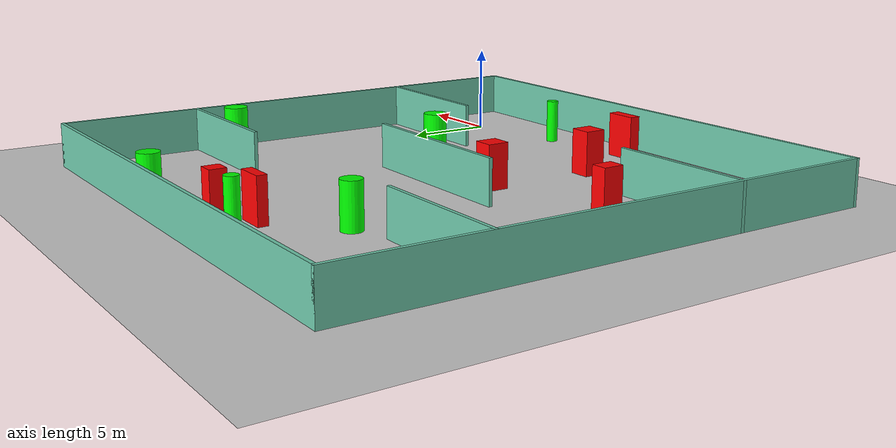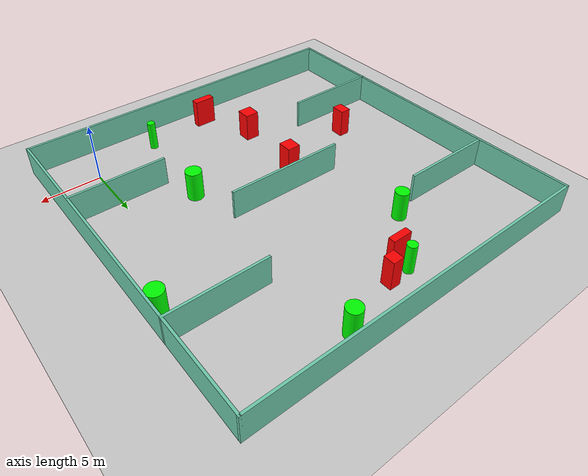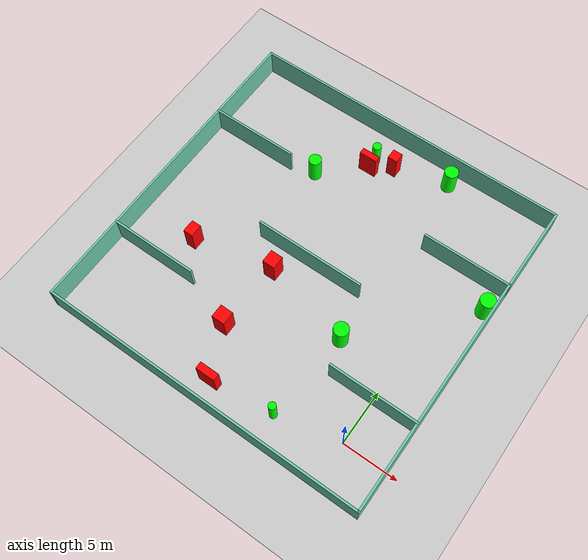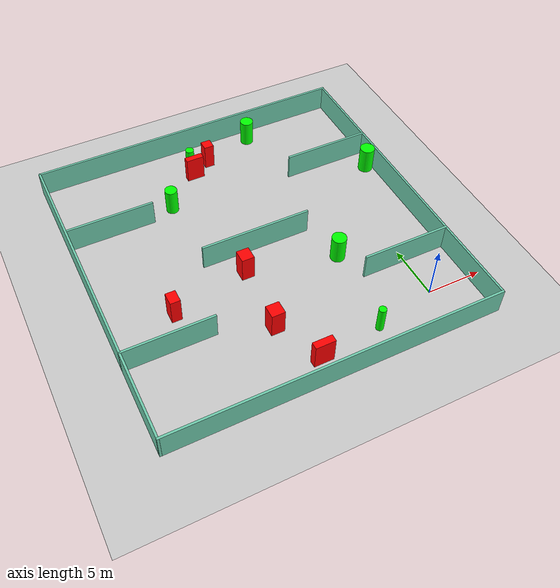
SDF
<sdf version="1.7">
 <world name="default">
  <light name="sun" type="directional">
   <pose>0 0 10 0 -0 0</pose>
   <diffuse>0.8 0.8 0.8 1</diffuse>
   <specular>0.2 0.2 0.2 1</specular>
   <attenuation>
    <range>1000</range>
    <constant>0.9</constant>
    <linear>0.01</linear>
    <quadratic>0.001</quadratic>
   </attenuation>
   <direction>-0.5 0.1 -0.9</direction>
   <spot><inner_angle>0</inner_angle><outer_angle>0</outer_angle><falloff>0</falloff></spot>
  </light>
  <model name="ground_plane">
   <static>1</static>
   <link name="link">
    <collision name="collision">
     <geometry><plane><normal>0 0 1</normal><size>100 100</size></plane></geometry>
     <surface>
      <contact><collide_bitmask>65535</collide_bitmask></contact>
      <friction><ode><mu>100</mu><mu2>50</mu2></ode></friction>
     </surface>
    </collision>
    <visual name="visual">
     <cast_shadows>0</cast_shadows>
     <geometry><plane><normal>0 0 1</normal><size>100 100</size></plane></geometry>
     <material>
      <script><uri>file://media/materials/scripts/gazebo.material</uri><name>Gazebo/Grey</name></script>
     </material>
    </visual>
   </link>
  </model>
  <gravity>0 0 -9.8</gravity>
  <magnetic_field>6e-06 2.3e-05 -4.2e-05</magnetic_field>
  <atmosphere type="adiabatic"/>
  <physics type="ode">
   <max_step_size>0.001</max_step_size>
   <real_time_factor>1</real_time_factor>
   <real_time_update_rate>1000</real_time_update_rate>
  </physics>
  <scene><ambient>0.4 0.4 0.4 1</ambient><background>0.7 0.7 0.7 1</background><shadows>1</shadows></scene>
  <spherical_coordinates>
   <surface_model>EARTH_WGS84</surface_model>
   <latitude_deg>0</latitude_deg>
   <longitude_deg>0</longitude_deg>
   <elevation>0</elevation>
   <heading_deg>0</heading_deg>
  </spherical_coordinates>
  <model name="my_base_walls">
   <link name="Wall_10">
    <collision name="Wall_10_Collision">
     <geometry><box><size>8.2 0.2 2.5</size></box></geometry>
     <pose>0 0 1.25 0 -0 0</pose>
    </collision>
    <visual name="Wall_10_Visual">
     <pose>0 0 1.25 0 -0 0</pose>
     <geometry><box><size>8.2 0.2 2.5</size></box></geometry>
     <material>
      <script><uri>file://media/materials/scripts/gazebo.material</uri><name>Gazebo/Grey</name></script>
      <ambient>0.435294 0.796078 0.67451 1</ambient>
     </material>
     <meta><layer>0</layer></meta>
    </visual>
    <pose>-11 -7 0 0 -0 0</pose>
   </link>
   <link name="Wall_12">
    <collision name="Wall_12_Collision">
     <geometry><box><size>8.2 0.2 2.5</size></box></geometry>
     <pose>0 0 1.25 0 -0 0</pose>
    </collision>
    <visual name="Wall_12_Visual">
     <pose>0 0 1.25 0 -0 0</pose>
     <geometry><box><size>8.2 0.2 2.5</size></box></geometry>
     <material>
      <script><uri>file://media/materials/scripts/gazebo.material</uri><name>Gazebo/Grey</name></script>
      <ambient>0.435294 0.796078 0.67451 1</ambient>
     </material>
     <meta><layer>0</layer></meta>
    </visual>
    <pose>-11 7 0 0 -0 0</pose>
   </link>
   <link name="Wall_14">
    <collision name="Wall_14_Collision">
     <geometry><box><size>8.2 0.2 2.5</size></box></geometry>
     <pose>0 0 1.25 0 -0 0</pose>
    </collision>
    <visual name="Wall_14_Visual">
     <pose>0 0 1.25 0 -0 0</pose>
     <geometry><box><size>8.2 0.2 2.5</size></box></geometry>
     <material>
      <script><uri>file://media/materials/scripts/gazebo.material</uri><name>Gazebo/Grey</name></script>
      <ambient>0.435294 0.796078 0.67451 1</ambient>
     </material>
     <meta><layer>0</layer></meta>
    </visual>
    <pose>11 7 0 0 -0 3.14159</pose>
   </link>
   <link name="Wall_16">
    <collision name="Wall_16_Collision">
     <geometry><box><size>10.2 0.2 2.5</size></box></geometry>
     <pose>0 0 1.25 0 -0 0</pose>
    </collision>
    <visual name="Wall_16_Visual">
     <pose>0 0 1.25 0 -0 0</pose>
     <geometry><box><size>10.2 0.2 2.5</size></box></geometry>
     <material>
      <script><uri>file://media/materials/scripts/gazebo.material</uri><name>Gazebo/Grey</name></script>
      <ambient>0.435294 0.796078 0.67451 1</ambient>
     </material>
     <meta><layer>0</layer></meta>
    </visual>
    <pose>0 0 0 0 -0 3.14159</pose>
   </link>
   <link name="Wall_2">
    <collision name="Wall_2_Collision">
     <geometry><box><size>30.2 0.2 2.5</size></box></geometry>
     <pose>0 0 1.25 0 -0 0</pose>
    </collision>
    <visual name="Wall_2_Visual">
     <pose>0 0 1.25 0 -0 0</pose>
     <geometry><box><size>30.2 0.2 2.5</size></box></geometry>
     <material>
      <script><uri>file://media/materials/scripts/gazebo.material</uri><name>Gazebo/Grey</name></script>
      <ambient>0.435294 0.796078 0.67451 1</ambient>
     </material>
     <meta><layer>0</layer></meta>
    </visual>
    <pose>0 -15 0 0 -0 3.14159</pose>
   </link>
   <link name="Wall_3">
    <collision name="Wall_3_Collision">
     <geometry><box><size>30.2 0.2 2.5</size></box></geometry>
     <pose>0 0 1.25 0 -0 0</pose>
    </collision>
    <visual name="Wall_3_Visual">
     <pose>0 0 1.25 0 -0 0</pose>
     <geometry><box><size>30.2 0.2 2.5</size></box></geometry>
     <material>
      <script><uri>file://media/materials/scripts/gazebo.material</uri><name>Gazebo/Grey</name></script>
      <ambient>0.435294 0.796078 0.67451 1</ambient>
     </material>
     <meta><layer>0</layer></meta>
    </visual>
    <pose>-15 0 0 0 -0 1.5708</pose>
   </link>
   <link name="Wall_4">
    <collision name="Wall_4_Collision">
     <geometry><box><size>30.2 0.2 2.5</size></box></geometry>
     <pose>0 0 1.25 0 -0 0</pose>
    </collision>
    <visual name="Wall_4_Visual">
     <pose>0 0 1.25 0 -0 0</pose>
     <geometry><box><size>30.2 0.2 2.5</size></box></geometry>
     <material>
      <script><uri>file://media/materials/scripts/gazebo.material</uri><name>Gazebo/Grey</name></script>
      <ambient>0.435294 0.796078 0.67451 1</ambient>
     </material>
     <meta><layer>0</layer></meta>
    </visual>
    <pose>0 15 0 0 -0 0</pose>
   </link>
   <link name="Wall_6">
    <collision name="Wall_6_Collision">
     <geometry><box><size>30.2 0.2 2.5</size></box></geometry>
     <pose>0 0 1.25 0 -0 0</pose>
    </collision>
    <visual name="Wall_6_Visual">
     <pose>0 0 1.25 0 -0 0</pose>
     <geometry><box><size>30.2 0.2 2.5</size></box></geometry>
     <material>
      <script><uri>file://media/materials/scripts/gazebo.material</uri><name>Gazebo/Grey</name></script>
      <ambient>0.435294 0.796078 0.67451 1</ambient>
     </material>
     <meta><layer>0</layer></meta>
    </visual>
    <pose>15 0 0 0 -0 1.5708</pose>
   </link>
   <link name="Wall_8">
    <collision name="Wall_8_Collision">
     <geometry><box><size>8.2 0.2 2.5</size></box></geometry>
     <pose>0 0 1.25 0 -0 0</pose>
    </collision>
    <visual name="Wall_8_Visual">
     <pose>0 0 1.25 0 -0 0</pose>
     <geometry><box><size>8.2 0.2 2.5</size></box></geometry>
     <material>
      <script><uri>file://media/materials/scripts/gazebo.material</uri><name>Gazebo/Grey</name></script>
      <ambient>0.435294 0.796078 0.67451 1</ambient>
     </material>
     <meta><layer>0</layer></meta>
    </visual>
    <pose>11 -7 0 0 -0 3.14159</pose>
   </link>
   <static>1</static>
   <pose>-11 11 0 0 -0 0</pose>
  </model>
  <model name="cylinder1">
   <static>1</static>
   <link name="link">
    <inertial>
     <mass>1</mass>
     <inertia><ixx>0.5</ixx><ixy>0</ixy><ixz>0</ixz><iyy>0.5</iyy><iyz>0</iyz><izz>1</izz></inertia>
    </inertial>
    <collision name="collision">
     <geometry><cylinder><radius>0.6655039748652806</radius><length>2.5</length></cylinder></geometry>
    </collision>
    <visual name="visual">
     <geometry><cylinder><radius>0.6655039748652806</radius><length>2.5</length></cylinder></geometry>
     <material>
      <ambient>0 1 0 1</ambient>
      <diffuse>0 1 0 1</diffuse>
      <specular>0.1 0.1 0.1 1</specular>
      <emissive>0 0 0 0</emissive>
     </material>
    </visual>
   </link>
   <pose>-4.998663660858384 6.92525521205374 1.25 0 0 0</pose>
  </model>
  <model name="cylinder2">
   <static>1</static>
   <link name="link">
    <inertial>
     <mass>1</mass>
     <inertia><ixx>0.5</ixx><ixy>0</ixy><ixz>0</ixz><iyy>0.5</iyy><iyz>0</iyz><izz>1</izz></inertia>
    </inertial>
    <collision name="collision">
     <geometry><cylinder><radius>0.6927046713713516</radius><length>2.5</length></cylinder></geometry>
    </collision>
    <visual name="visual">
     <geometry><cylinder><radius>0.6927046713713516</radius><length>2.5</length></cylinder></geometry>
     <material>
      <ambient>0 1 0 1</ambient>
      <diffuse>0 1 0 1</diffuse>
      <specular>0.1 0.1 0.1 1</specular>
      <emissive>0 0 0 0</emissive>
     </material>
    </visual>
   </link>
   <pose>3.2694739326043667 15.842531755834798 1.25 0 0 0</pose>
  </model>
  <model name="cylinder3">
   <static>1</static>
   <link name="link">
    <inertial>
     <mass>1</mass>
     <inertia><ixx>0.5</ixx><ixy>0</ixy><ixz>0</ixz><iyy>0.5</iyy><iyz>0</iyz><izz>1</izz></inertia>
    </inertial>
    <collision name="collision">
     <geometry><cylinder><radius>0.5726014190669373</radius><length>2.5</length></cylinder></geometry>
    </collision>
    <visual name="visual">
     <geometry><cylinder><radius>0.5726014190669373</radius><length>2.5</length></cylinder></geometry>
     <material>
      <ambient>0 1 0 1</ambient>
      <diffuse>0 1 0 1</diffuse>
      <specular>0.1 0.1 0.1 1</specular>
      <emissive>0 0 0 0</emissive>
     </material>
    </visual>
   </link>
   <pose>-15.8559981270054 18.739827008905543 1.25 0 0 0</pose>
  </model>
  <model name="cylinder4">
   <static>1</static>
   <link name="link">
    <inertial>
     <mass>1</mass>
     <inertia><ixx>0.5</ixx><ixy>0</ixy><ixz>0</ixz><iyy>0.5</iyy><iyz>0</iyz><izz>1</izz></inertia>
    </inertial>
    <collision name="collision">
     <geometry><cylinder><radius>0.623288290056796</radius><length>2.5</length></cylinder></geometry>
    </collision>
    <visual name="visual">
     <geometry><cylinder><radius>0.623288290056796</radius><length>2.5</length></cylinder></geometry>
     <material>
      <ambient>0 1 0 1</ambient>
      <diffuse>0 1 0 1</diffuse>
      <specular>0.1 0.1 0.1 1</specular>
      <emissive>0 0 0 0</emissive>
     </material>
    </visual>
   </link>
   <pose>-5.43431718626857 24.551101315513645 1.25 0 0 0</pose>
  </model>
  <model name="cylinder5">
   <static>1</static>
   <link name="link">
    <inertial>
     <mass>1</mass>
     <inertia><ixx>0.5</ixx><ixy>0</ixy><ixz>0</ixz><iyy>0.5</iyy><iyz>0</iyz><izz>1</izz></inertia>
    </inertial>
    <collision name="collision">
     <geometry><cylinder><radius>0.33280268792193834</radius><length>2.5</length></cylinder></geometry>
    </collision>
    <visual name="visual">
     <geometry><cylinder><radius>0.33280268792193834</radius><length>2.5</length></cylinder></geometry>
     <material>
      <ambient>0 1 0 1</ambient>
      <diffuse>0 1 0 1</diffuse>
      <specular>0.1 0.1 0.1 1</specular>
      <emissive>0 0 0 0</emissive>
     </material>
    </visual>
   </link>
   <pose>-5.757208569978282 -1.2804825343380148 1.25 0 0 0</pose>
  </model>
  <model name="cylinder6">
   <static>1</static>
   <link name="link">
    <inertial>
     <mass>1</mass>
     <inertia><ixx>0.5</ixx><ixy>0</ixy><ixz>0</ixz><iyy>0.5</iyy><iyz>0</iyz><izz>1</izz></inertia>
    </inertial>
    <collision name="collision">
     <geometry><cylinder><radius>0.3973690229117884</radius><length>2.5</length></cylinder></geometry>
    </collision>
    <visual name="visual">
     <geometry><cylinder><radius>0.3973690229117884</radius><length>2.5</length></cylinder></geometry>
     <material>
      <ambient>0 1 0 1</ambient>
      <diffuse>0 1 0 1</diffuse>
      <specular>0.1 0.1 0.1 1</specular>
      <emissive>0 0 0 0</emissive>
     </material>
    </visual>
   </link>
   <pose>-12.191893139557274 23.051630996994007 1.25 0 0 0</pose>
  </model>
  <model name="box1">
   <static>1</static>
   <link name="link">
    <inertial>
     <mass>1</mass>
     <inertia><ixx>0.083</ixx><ixy>0</ixy><ixz>0</ixz><iyy>0.083</iyy><iyz>0</iyz><izz>0.083</izz></inertia>
    </inertial>
    <collision name="collision">
     <geometry><box><size>1.7955528831071979 0.6404378699052218 2.5</size></box></geometry>
    </collision>
    <visual name="visual">
     <geometry><box><size>1.7955528831071979 0.6404378699052218 2.5</size></box></geometry>
     <material>
      <ambient>1 0 0 1</ambient>
      <diffuse>1 0 0 1</diffuse>
      <specular>0.1 0.1 0.1 1</specular>
      <emissive>0 0 0 0</emissive>
     </material>
    </visual>
    <sensor name="my_contact" type="contact">
     <contact><collision>box_collision</collision><topic>__default_topic__</topic></contact>
    </sensor>
   </link>
   <pose>-11.497425856661712 -1.9801578972864804 1.25 0 0 0</pose>
  </model>
  <model name="box2">
   <static>1</static>
   <link name="link">
    <inertial>
     <mass>1</mass>
     <inertia><ixx>0.083</ixx><ixy>0</ixy><ixz>0</ixz><iyy>0.083</iyy><iyz>0</iyz><izz>0.083</izz></inertia>
    </inertial>
    <collision name="collision">
     <geometry><box><size>0.9083507180315376 1.1659524855159873 2.5</size></box></geometry>
    </collision>
    <visual name="visual">
     <geometry><box><size>0.9083507180315376 1.1659524855159873 2.5</size></box></geometry>
     <material>
      <ambient>1 0 0 1</ambient>
      <diffuse>1 0 0 1</diffuse>
      <specular>0.1 0.1 0.1 1</specular>
      <emissive>0 0 0 0</emissive>
     </material>
    </visual>
    <sensor name="my_contact" type="contact">
     <contact><collision>box_collision</collision><topic>__default_topic__</topic></contact>
    </sensor>
   </link>
   <pose>-20.349156691044183 7.169062932846204 1.25 0 0 0</pose>
  </model>
  <model name="box3">
   <static>1</static>
   <link name="link">
    <inertial>
     <mass>1</mass>
     <inertia><ixx>0.083</ixx><ixy>0</ixy><ixz>0</ixz><iyy>0.083</iyy><iyz>0</iyz><izz>0.083</izz></inertia>
    </inertial>
    <collision name="collision">
     <geometry><box><size>1.2084647936256083 1.2087032960077924 2.5</size></box></geometry>
    </collision>
    <visual name="visual">
     <geometry><box><size>1.2084647936256083 1.2087032960077924 2.5</size></box></geometry>
     <material>
      <ambient>1 0 0 1</ambient>
      <diffuse>1 0 0 1</diffuse>
      <specular>0.1 0.1 0.1 1</specular>
      <emissive>0 0 0 0</emissive>
     </material>
    </visual>
    <sensor name="my_contact" type="contact">
     <contact><collision>box_collision</collision><topic>__default_topic__</topic></contact>
    </sensor>
   </link>
   <pose>-13.457549997766229 2.446367649029579 1.25 0 0 0</pose>
  </model>
  <model name="box4">
   <static>1</static>
   <link name="link">
    <inertial>
     <mass>1</mass>
     <inertia><ixx>0.083</ixx><ixy>0</ixy><ixz>0</ixz><iyy>0.083</iyy><iyz>0</iyz><izz>0.083</izz></inertia>
    </inertial>
    <collision name="collision">
     <geometry><box><size>0.9212289650045614 0.9318977071951108 2.5</size></box></geometry>
    </collision>
    <visual name="visual">
     <geometry><box><size>0.9212289650045614 0.9318977071951108 2.5</size></box></geometry>
     <material>
      <ambient>1 0 0 1</ambient>
      <diffuse>1 0 0 1</diffuse>
      <specular>0.1 0.1 0.1 1</specular>
      <emissive>0 0 0 0</emissive>
     </material>
    </visual>
    <sensor name="my_contact" type="contact">
     <contact><collision>box_collision</collision><topic>__default_topic__</topic></contact>
    </sensor>
   </link>
   <pose>-10.335596732472677 23.10763668445244 1.25 0 0 0</pose>
  </model>
  <model name="box5">
   <static>1</static>
   <link name="link">
    <inertial>
     <mass>1</mass>
     <inertia><ixx>0.083</ixx><ixy>0</ixy><ixz>0</ixz><iyy>0.083</iyy><iyz>0</iyz><izz>0.083</izz></inertia>
    </inertial>
    <collision name="collision">
     <geometry><box><size>1.6793321153636778 0.5661131733431645 2.5</size></box></geometry>
    </collision>
    <visual name="visual">
     <geometry><box><size>1.6793321153636778 0.5661131733431645 2.5</size></box></geometry>
     <material>
      <ambient>1 0 0 1</ambient>
      <diffuse>1 0 0 1</diffuse>
      <specular>0.1 0.1 0.1 1</specular>
      <emissive>0 0 0 0</emissive>
     </material>
    </visual>
    <sensor name="my_contact" type="contact">
     <contact><collision>box_collision</collision><topic>__default_topic__</topic></contact>
    </sensor>
   </link>
   <pose>-12.219933691296056 21.902661269433928 1.25 0 0 0</pose>
  </model>
  <model name="box6">
   <static>1</static>
   <link name="link">
    <inertial>
     <mass>1</mass>
     <inertia><ixx>0.083</ixx><ixy>0</ixy><ixz>0</ixz><iyy>0.083</iyy><iyz>0</iyz><izz>0.083</izz></inertia>
    </inertial>
    <collision name="collision">
     <geometry><box><size>1.1414117376639077 1.210328655440596 2.5</size></box></geometry>
    </collision>
    <visual name="visual">
     <geometry><box><size>1.1414117376639077 1.210328655440596 2.5</size></box></geometry>
     <material>
      <ambient>1 0 0 1</ambient>
      <diffuse>1 0 0 1</diffuse>
      <specular>0.1 0.1 0.1 1</specular>
      <emissive>0 0 0 0</emissive>
     </material>
    </visual>
    <sensor name="my_contact" type="contact">
     <contact><collision>box_collision</collision><topic>__default_topic__</topic></contact>
    </sensor>
   </link>
   <pose>-13.117283773521768 8.739838647874146 1.25 0 0 0</pose>
  </model>
 </world>
</sdf>
